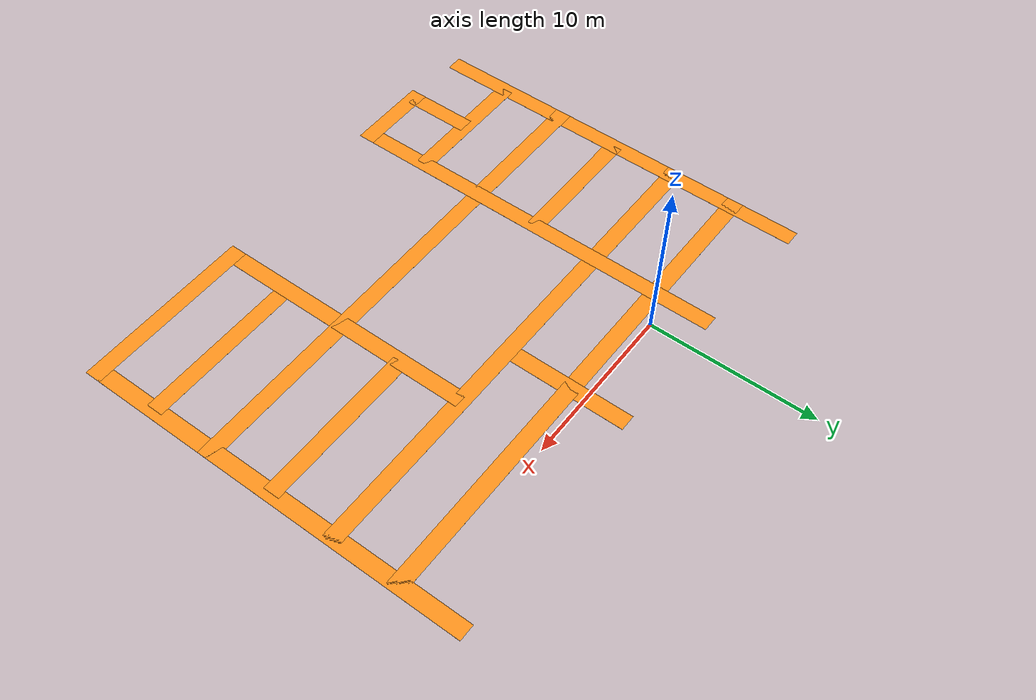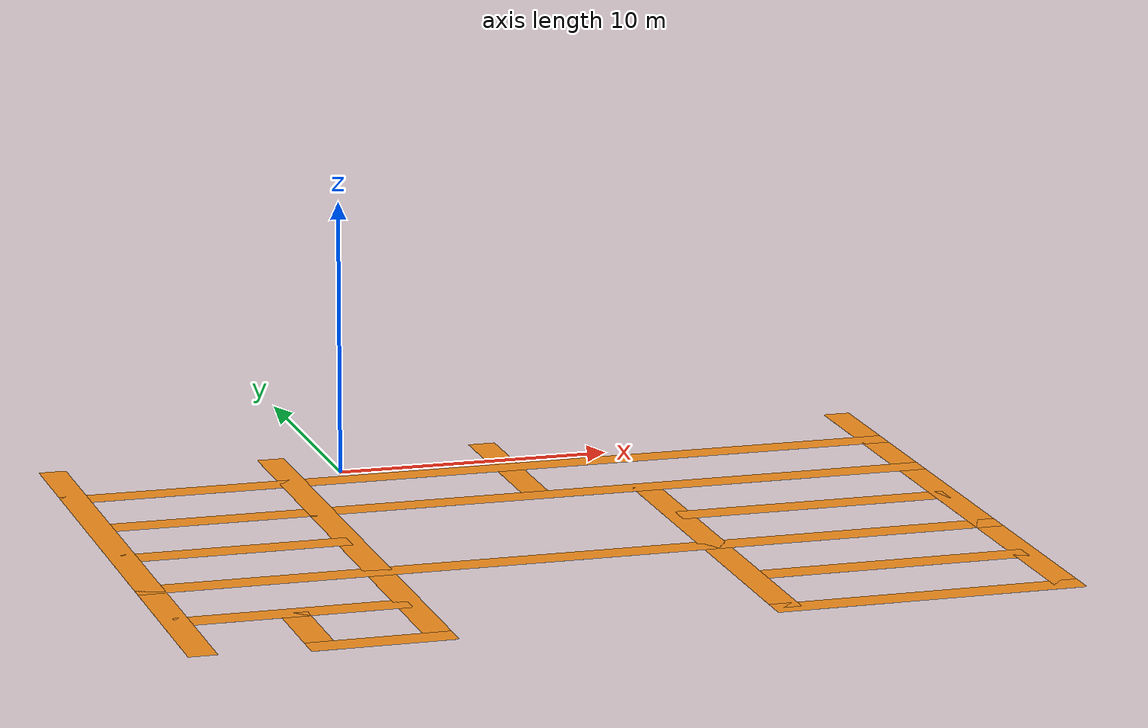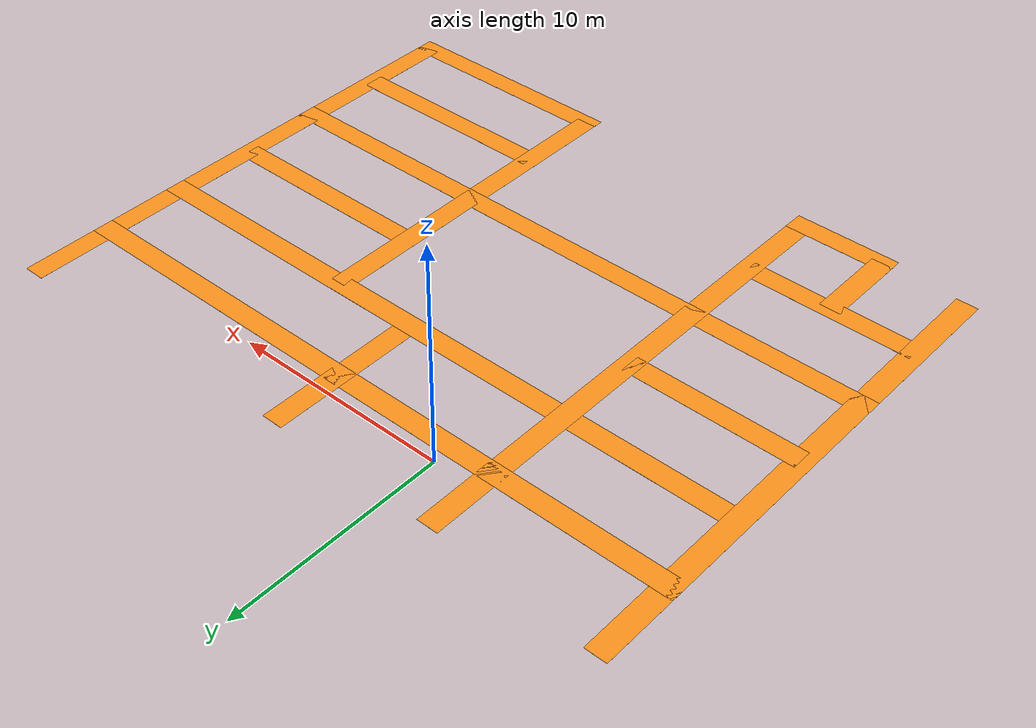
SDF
<?xml version='1.0'?>
<sdf version='1.4'>
  <model name='shenling'>
    <link name='Wall_0'>
      <collision name='Wall_0_Collision'>
        <geometry>
          <box>
            <size>23 1 0.001</size>
          </box>
        </geometry>
        <pose>0 0 0.0005 0 -0 0</pose>
      </collision>
      <visual name='Wall_0_Visual'>
        <pose>0 0 0.0005 0 -0 0</pose>
        <geometry>
          <box>
            <size>23 1 0.001</size>
          </box>
        </geometry>
        <material>
          <script>
            <uri>file://media/materials/scripts/gazebo.material</uri>
            <name>Gazebo/Orange</name>
          </script>
        </material>
      </visual>
      <velocity_decay>
        <linear>0</linear>
        <angular>0</angular>
      </velocity_decay>
      <pose>-2 -9 0 0 0 -1.5708</pose>
    </link>
    <link name='Wall_2'>
      <collision name='Wall_2_Collision'>
        <geometry>
          <box>
            <size>31 1 0.001</size>
          </box>
        </geometry>
        <pose>0 0 0.0005 0 -0 0</pose>
      </collision>
      <visual name='Wall_2_Visual'>
        <pose>0 0 0.0005 0 -0 0</pose>
        <geometry>
          <box>
            <size>31 1 0.001</size>
          </box>
        </geometry>
        <material>
          <script>
            <uri>file://media/materials/scripts/gazebo.material</uri>
            <name>Gazebo/Orange</name>
          </script>
        </material>
      </visual>
      <velocity_decay>
        <linear>0</linear>
        <angular>0</angular>
      </velocity_decay>
      <pose>5 -1 0 0 -0 3.14159</pose>
    </link>
    <link name='Wall_4'>
      <collision name='Wall_4_Collision'>
        <geometry>
          <box>
            <size>31 1 0.001</size>
          </box>
        </geometry>
        <pose>0 0 0.0005 0 -0 0</pose>
      </collision>
      <visual name='Wall_4_Visual'>
        <pose>0 0 0.0005 0 -0 0</pose>
        <geometry>
          <box>
            <size>31 1 0.001</size>
          </box>
        </geometry>
        <material>
          <script>
            <uri>file://media/materials/scripts/gazebo.material</uri>
            <name>Gazebo/Orange</name>
          </script>
        </material>
      </visual>
      <velocity_decay>
        <linear>0</linear>
        <angular>0</angular>
      </velocity_decay>
      <pose>5 -5 0 0 -0 3.14159</pose>
    </link>
    <link name='Wall_6'>
      <collision name='Wall_6_Collision'>
        <geometry>
          <box>
            <size>31 1 0.001</size>
          </box>
        </geometry>
        <pose>0 0 0.0005 0 -0 0</pose>
      </collision>
      <visual name='Wall_6_Visual'>
        <pose>0 0 0.0005 0 -0 0</pose>
        <geometry>
          <box>
            <size>31 1 0.001</size>
          </box>
        </geometry>
        <material>
          <script>
            <uri>file://media/materials/scripts/gazebo.material</uri>
            <name>Gazebo/Orange</name>
          </script>
        </material>
      </visual>
      <velocity_decay>
        <linear>0</linear>
        <angular>0</angular>
      </velocity_decay>
      <pose>5 -13 0 0 -0 0</pose>
    </link>
    <link name='Wall_7'>
      <collision name='Wall_7_Collision'>
        <geometry>
          <box>
            <size>7 1 0.001</size>
          </box>
        </geometry>
        <pose>0 0 0.0005 0 -0 0</pose>
      </collision>
      <visual name='Wall_7_Visual'>
        <pose>0 0 0.0005 0 -0 0</pose>
        <geometry>
          <box>
            <size>7 1 0.001</size>
          </box>
        </geometry>
        <material>
          <script>
            <uri>file://media/materials/scripts/gazebo.material</uri>
            <name>Gazebo/Orange</name>
          </script>
        </material>
      </visual>
      <velocity_decay>
        <linear>0</linear>
        <angular>0</angular>
      </velocity_decay>
      <pose>6 -1 0 0 0 -1.5708</pose>
    </link>
    <link name='Wall_8'>
      <collision name='Wall_8_Collision'>
        <geometry>
          <box>
            <size>16 1 0.001</size>
          </box>
        </geometry>
        <pose>0 0 0.0005 0 -0 0</pose>
      </collision>
      <visual name='Wall_8_Visual'>
        <pose>0 0 0.0005 0 -0 0</pose>
        <geometry>
          <box>
            <size>16 1 0.001</size>
          </box>
        </geometry>
        <material>
          <script>
            <uri>file://media/materials/scripts/gazebo.material</uri>
            <name>Gazebo/Orange</name>
          </script>
        </material>
      </visual>
      <velocity_decay>
        <linear>0</linear>
        <angular>0</angular>
      </velocity_decay>
      <pose>10 -13 0 0 0 -1.5708</pose>
    </link>
    <link name='Wall_9'>
      <collision name='Wall_9_Collision'>
        <geometry>
          <box>
            <size>10 1 0.001</size>
          </box>
        </geometry>
        <pose>0 0 0.0005 0 -0 0</pose>
      </collision>
      <visual name='Wall_9_Visual'>
        <pose>0 0 0.0005 0 -0 0</pose>
        <geometry>
          <box>
            <size>10 1 0.001</size>
          </box>
        </geometry>
        <material>
          <script>
            <uri>file://media/materials/scripts/gazebo.material</uri>
            <name>Gazebo/Orange</name>
          </script>
        </material>
      </visual>
      <velocity_decay>
        <linear>0</linear>
        <angular>0</angular>
      </velocity_decay>
      <pose>15 -17 0 0 -0 3.14159</pose>
    </link>
    <link name='Wall_10'>
      <collision name='Wall_10_Collision'>
        <geometry>
          <box>
            <size>8 1 0.001</size>
          </box>
        </geometry>
        <pose>0 0 0.0005 0 -0 0</pose>
      </collision>
      <visual name='Wall_10_Visual'>
        <pose>0 0 0.0005 0 -0 0</pose>
        <geometry>
          <box>
            <size>8 1 0.001</size>
          </box>
        </geometry>
        <material>
          <script>
            <uri>file://media/materials/scripts/gazebo.material</uri>
            <name>Gazebo/Orange</name>
          </script>
        </material>
      </visual>
      <velocity_decay>
        <linear>0</linear>
        <angular>0</angular>
      </velocity_decay>
      <pose>-6 -9 0 0 -0 3.14159</pose>
    </link>
    <link name='Wall_11'>
      <collision name='Wall_11_Collision'>
        <geometry>
          <box>
            <size>8 1 0.001</size>
          </box>
        </geometry>
        <pose>0 0 0.0005 0 -0 0</pose>
      </collision>
      <visual name='Wall_11_Visual'>
        <pose>0 0 0.0005 0 -0 0</pose>
        <geometry>
          <box>
            <size>8 1 0.001</size>
          </box>
        </geometry>
        <material>
          <script>
            <uri>file://media/materials/scripts/gazebo.material</uri>
            <name>Gazebo/Orange</name>
          </script>
        </material>
      </visual>
      <velocity_decay>
        <linear>0</linear>
        <angular>0</angular>
      </velocity_decay>
      <pose>-6 -17 0 0 -0 3.14159</pose>
    </link>
    <link name='Wall_12'>
      <collision name='Wall_12_Collision'>
        <geometry>
          <box>
            <size>4 1 0.001</size>
          </box>
        </geometry>
        <pose>0 0 0.0005 0 -0 0</pose>
      </collision>
      <visual name='Wall_12_Visual'>
        <pose>0 0 0.0005 0 -0 0</pose>
        <geometry>
          <box>
            <size>4 1 0.001</size>
          </box>
        </geometry>
        <material>
          <script>
            <uri>file://media/materials/scripts/gazebo.material</uri>
            <name>Gazebo/Orange</name>
          </script>
        </material>
      </visual>
      <velocity_decay>
        <linear>0</linear>
        <angular>0</angular>
      </velocity_decay>
      <pose>-6 -19 0 0 0 -1.5708</pose>
    </link>
    <link name='Wall_13'>
      <collision name='Wall_13_Collision'>
        <geometry>
          <box>
            <size>10 1 0.001</size>
          </box>
        </geometry>
        <pose>0 0 0.0005 0 -0 0</pose>
      </collision>
      <visual name='Wall_13_Visual'>
        <pose>0 0 0.0005 0 -0 0</pose>
        <geometry>
          <box>
            <size>10 1 0.001</size>
          </box>
        </geometry>
        <material>
          <script>
            <uri>file://media/materials/scripts/gazebo.material</uri>
            <name>Gazebo/Orange</name>
          </script>
        </material>
      </visual>
      <velocity_decay>
        <linear>0</linear>
        <angular>0</angular>
      </velocity_decay>
      <pose>15 -9 0 0 -0 0</pose>
    </link>
    <link name='Wall_left'>
      <collision name='Wall_left_Collision'>
        <geometry>
          <box>
            <size>24 1 0.001</size>
          </box>
        </geometry>
        <pose>0 0 0.0005 0 -0 0</pose>
      </collision>
      <visual name='Wall_left_Visual'>
        <pose>0 0 0.0005 0 -0 0</pose>
        <geometry>
          <box>
            <size>24 1 0.001</size>
          </box>
        </geometry>
        <material>
          <script>
            <uri>file://media/materials/scripts/gazebo.material</uri>
            <name>Gazebo/Orange</name>
          </script>
        </material>
      </visual>
      <velocity_decay>
        <linear>0</linear>
        <angular>0</angular>
      </velocity_decay>
      <pose>-10 -9 0 0 0 -1.5708</pose>
    </link>
    <link name='Wall_right'>
      <collision name='Wall_right_Collision'>
        <geometry>
          <box>
            <size>24 1 0.001</size>
          </box>
        </geometry>
        <pose>0 0 0.0005 0 -0 0</pose>
      </collision>
      <visual name='Wall_right_Visual'>
        <pose>0 0 0.0005 0 -0 0</pose>
        <geometry>
          <box>
            <size>24 1 0.001</size>
          </box>
        </geometry>
        <material>
          <script>
            <uri>file://media/materials/scripts/gazebo.material</uri>
            <name>Gazebo/Orange</name>
          </script>
        </material>
      </visual>
      <velocity_decay>
        <linear>0</linear>
        <angular>0</angular>
      </velocity_decay>
      <pose>20 -9 0 0 0 -1.5708</pose>
    </link>
    <link name='Wall_down1'>
      <collision name='Wall_down1_Collision'>
        <geometry>
          <box>
            <size>5 1 0.001</size>
          </box>
        </geometry>
        <pose>0 0 0.0005 0 -0 0</pose>
      </collision>
      <visual name='Wall_down1_Visual'>
        <pose>0 0 0.0005 0 -0 0</pose>
        <geometry>
          <box>
            <size>5 1 0.001</size>
          </box>
        </geometry>
        <material>
          <script>
            <uri>file://media/materials/scripts/gazebo.material</uri>
            <name>Gazebo/Orange</name>
          </script>
        </material>
      </visual>
      <velocity_decay>
        <linear>0</linear>
        <angular>0</angular>
      </velocity_decay>
      <pose>-4 -21 0 0 -0 0</pose>
    </link>
    <link name='Wall_down2'>
      <collision name='Wall_down2_Collision'>
        <geometry>
          <box>
            <size>11 1 0.001</size>
          </box>
        </geometry>
        <pose>0 0 0.0005 0 -0 0</pose>
      </collision>
      <visual name='Wall_down2_Visual'>
        <pose>0 0 0.0005 0 -0 0</pose>
        <geometry>
          <box>
            <size>11 1 0.001</size>
          </box>
        </geometry>
        <material>
          <script>
            <uri>file://media/materials/scripts/gazebo.material</uri>
            <name>Gazebo/Orange</name>
          </script>
        </material>
      </visual>
      <velocity_decay>
        <linear>0</linear>
        <angular>0</angular>
      </velocity_decay>
      <pose>15 -21 0 0 -0 0</pose>
    </link>
    <static>1</static>
  </model>
</sdf>
